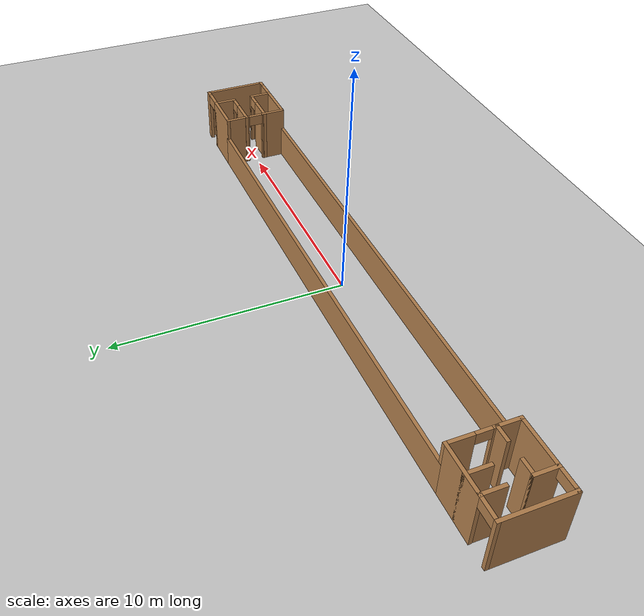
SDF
<sdf version="1.7">
 <world name="default">
  <light name="sun" type="directional">
   <pose>0 0 10 0 -0 0</pose>
   <diffuse>0.8 0.8 0.8 1</diffuse>
   <specular>0.2 0.2 0.2 1</specular>
   <attenuation>
    <range>1000</range>
    <constant>0.9</constant>
    <linear>0.01</linear>
    <quadratic>0.001</quadratic>
   </attenuation>
   <direction>-0.5 0.1 -0.9</direction>
   <spot><inner_angle>0</inner_angle><outer_angle>0</outer_angle><falloff>0</falloff></spot>
  </light>
  <model name="ground_plane">
   <static>1</static>
   <link name="link">
    <collision name="collision">
     <geometry><plane><normal>0 0 1</normal><size>100 100</size></plane></geometry>
     <surface><friction><ode><mu>100</mu><mu2>50</mu2></ode></friction></surface>
    </collision>
    <visual name="visual">
     <cast_shadows>0</cast_shadows>
     <geometry><plane><normal>0 0 1</normal><size>100 100</size></plane></geometry>
     <material>
      <script><uri>file://media/materials/scripts/gazebo.material</uri><name>Gazebo/Grey</name></script>
     </material>
    </visual>
   </link>
  </model>
  <gravity>0 0 -9.8</gravity>
  <magnetic_field>6e-06 2.3e-05 -4.2e-05</magnetic_field>
  <atmosphere type="adiabatic"/>
  <physics type="ode">
   <max_step_size>0.001</max_step_size>
   <real_time_factor>1</real_time_factor>
   <real_time_update_rate>1000</real_time_update_rate>
  </physics>
  <scene><ambient>0.4 0.4 0.4 1</ambient><background>0.7 0.7 0.7 1</background><shadows>1</shadows></scene>
  <audio><device>default</device></audio>
  <spherical_coordinates>
   <surface_model>EARTH_WGS84</surface_model>
   <latitude_deg>0</latitude_deg>
   <longitude_deg>0</longitude_deg>
   <elevation>0</elevation>
   <heading_deg>0</heading_deg>
  </spherical_coordinates>
  <model name="tejas_train">
   <pose>0.0056 0.000165 0 0 -0 0</pose>
   <link name="Wall_11">
    <pose>-10.5 0 0 0 -0 -1.5708</pose>
    <visual name="Wall_11_Visual_0">
     <pose>-0.902332 0 1.25 0 -0 0</pose>
     <geometry><box><size>1.14533 0.15 2.5</size></box></geometry>
     <material>
      <script><uri>file://media/materials/scripts/gazebo.material</uri><name>Gazebo/Wood</name></script>
      <ambient>1 1 1 1</ambient>
     </material>
     <meta><layer>0</layer></meta>
    </visual>
    <collision name="Wall_11_Collision_0">
     <geometry><box><size>1.14533 0.15 2.5</size></box></geometry>
     <pose>-0.902332 0 1.25 0 -0 0</pose>
    </collision>
    <visual name="Wall_11_Visual_1">
     <pose>0.897668 0 1.25 0 -0 0</pose>
     <geometry><box><size>1.15467 0.15 2.5</size></box></geometry>
     <material>
      <script><uri>file://media/materials/scripts/gazebo.material</uri><name>Gazebo/Wood</name></script>
      <ambient>1 1 1 1</ambient>
     </material>
     <meta><layer>0</layer></meta>
    </visual>
    <collision name="Wall_11_Collision_1">
     <geometry><box><size>1.15467 0.15 2.5</size></box></geometry>
     <pose>0.897668 0 1.25 0 -0 0</pose>
    </collision>
    <visual name="Wall_11_Visual_2">
     <pose>-0.004665 0 2.25 0 -0 0</pose>
     <geometry><box><size>0.65 0.15 0.5</size></box></geometry>
     <material>
      <script><uri>file://media/materials/scripts/gazebo.material</uri><name>Gazebo/Wood</name></script>
      <ambient>1 1 1 1</ambient>
     </material>
     <meta><layer>0</layer></meta>
    </visual>
    <collision name="Wall_11_Collision_2">
     <geometry><box><size>0.65 0.15 0.5</size></box></geometry>
     <pose>-0.004665 0 2.25 0 -0 0</pose>
    </collision>
   </link>
   <link name="Wall_13">
    <pose>10.5 0 0 0 -0 -1.5708</pose>
    <visual name="Wall_13_Visual_0">
     <pose>-0.902332 0 1.25 0 -0 0</pose>
     <geometry><box><size>1.14533 0.15 2.5</size></box></geometry>
     <material>
      <script><uri>file://media/materials/scripts/gazebo.material</uri><name>Gazebo/Wood</name></script>
      <ambient>1 1 1 1</ambient>
     </material>
     <meta><layer>0</layer></meta>
    </visual>
    <collision name="Wall_13_Collision_0">
     <geometry><box><size>1.14533 0.15 2.5</size></box></geometry>
     <pose>-0.902332 0 1.25 0 -0 0</pose>
    </collision>
    <visual name="Wall_13_Visual_1">
     <pose>0.897668 0 1.25 0 -0 0</pose>
     <geometry><box><size>1.15467 0.15 2.5</size></box></geometry>
     <material>
      <script><uri>file://media/materials/scripts/gazebo.material</uri><name>Gazebo/Wood</name></script>
      <ambient>1 1 1 1</ambient>
     </material>
     <meta><layer>0</layer></meta>
    </visual>
    <collision name="Wall_13_Collision_1">
     <geometry><box><size>1.15467 0.15 2.5</size></box></geometry>
     <pose>0.897668 0 1.25 0 -0 0</pose>
    </collision>
    <visual name="Wall_13_Visual_2">
     <pose>-0.004665 0 2.25 0 -0 0</pose>
     <geometry><box><size>0.65 0.15 0.5</size></box></geometry>
     <material>
      <script><uri>file://media/materials/scripts/gazebo.material</uri><name>Gazebo/Wood</name></script>
      <ambient>1 1 1 1</ambient>
     </material>
     <meta><layer>0</layer></meta>
    </visual>
    <collision name="Wall_13_Collision_2">
     <geometry><box><size>0.65 0.15 0.5</size></box></geometry>
     <pose>-0.004665 0 2.25 0 -0 0</pose>
    </collision>
   </link>
   <link name="Wall_15">
    <pose>-12 1.4 0 0 -0 3.14159</pose>
    <visual name="Wall_15_Visual_0">
     <pose>-0.479459 0 1.25 0 -0 0</pose>
     <geometry><box><size>2.19108 0.15 2.5</size></box></geometry>
     <material>
      <script><uri>file://media/materials/scripts/gazebo.material</uri><name>Gazebo/Wood</name></script>
      <ambient>1 1 1 1</ambient>
     </material>
     <meta><layer>0</layer></meta>
    </visual>
    <collision name="Wall_15_Collision_0">
     <geometry><box><size>2.19108 0.15 2.5</size></box></geometry>
     <pose>-0.479459 0 1.25 0 -0 0</pose>
    </collision>
    <visual name="Wall_15_Visual_1">
     <pose>1.49554 0 1.25 0 -0 0</pose>
     <geometry><box><size>0.158918 0.15 2.5</size></box></geometry>
     <material>
      <script><uri>file://media/materials/scripts/gazebo.material</uri><name>Gazebo/Wood</name></script>
      <ambient>1 1 1 1</ambient>
     </material>
     <meta><layer>0</layer></meta>
    </visual>
    <collision name="Wall_15_Collision_1">
     <geometry><box><size>0.158918 0.15 2.5</size></box></geometry>
     <pose>1.49554 0 1.25 0 -0 0</pose>
    </collision>
    <visual name="Wall_15_Visual_2">
     <pose>1.01608 0 2.25 0 -0 0</pose>
     <geometry><box><size>0.8 0.15 0.5</size></box></geometry>
     <material>
      <script><uri>file://media/materials/scripts/gazebo.material</uri><name>Gazebo/Wood</name></script>
      <ambient>1 1 1 1</ambient>
     </material>
     <meta><layer>0</layer></meta>
    </visual>
    <collision name="Wall_15_Collision_2">
     <geometry><box><size>0.8 0.15 0.5</size></box></geometry>
     <pose>1.01608 0 2.25 0 -0 0</pose>
    </collision>
   </link>
   <link name="Wall_17">
    <pose>-12 -1.4 0 0 -0 3.14159</pose>
    <visual name="Wall_17_Visual_0">
     <pose>-0.487891 0 1.25 0 -0 0</pose>
     <geometry><box><size>2.17422 0.15 2.5</size></box></geometry>
     <material>
      <script><uri>file://media/materials/scripts/gazebo.material</uri><name>Gazebo/Wood</name></script>
      <ambient>1 1 1 1</ambient>
     </material>
     <meta><layer>0</layer></meta>
    </visual>
    <collision name="Wall_17_Collision_0">
     <geometry><box><size>2.17422 0.15 2.5</size></box></geometry>
     <pose>-0.487891 0 1.25 0 -0 0</pose>
    </collision>
    <visual name="Wall_17_Visual_1">
     <pose>1.48711 0 1.25 0 -0 0</pose>
     <geometry><box><size>0.175782 0.15 2.5</size></box></geometry>
     <material>
      <script><uri>file://media/materials/scripts/gazebo.material</uri><name>Gazebo/Wood</name></script>
      <ambient>1 1 1 1</ambient>
     </material>
     <meta><layer>0</layer></meta>
    </visual>
    <collision name="Wall_17_Collision_1">
     <geometry><box><size>0.175782 0.15 2.5</size></box></geometry>
     <pose>1.48711 0 1.25 0 -0 0</pose>
    </collision>
    <visual name="Wall_17_Visual_2">
     <pose>0.999218 0 2.25 0 -0 0</pose>
     <geometry><box><size>0.8 0.15 0.5</size></box></geometry>
     <material>
      <script><uri>file://media/materials/scripts/gazebo.material</uri><name>Gazebo/Wood</name></script>
      <ambient>1 1 1 1</ambient>
     </material>
     <meta><layer>0</layer></meta>
    </visual>
    <collision name="Wall_17_Collision_2">
     <geometry><box><size>0.8 0.15 0.5</size></box></geometry>
     <pose>0.999218 0 2.25 0 -0 0</pose>
    </collision>
   </link>
   <link name="Wall_19">
    <collision name="Wall_19_Collision">
     <geometry><box><size>1.05 0.15 2.5</size></box></geometry>
     <pose>0 0 1.25 0 -0 0</pose>
    </collision>
    <visual name="Wall_19_Visual">
     <pose>0 0 1.25 0 -0 0</pose>
     <geometry><box><size>1.05 0.15 2.5</size></box></geometry>
     <material>
      <script><uri>file://media/materials/scripts/gazebo.material</uri><name>Gazebo/Wood</name></script>
      <ambient>1 1 1 1</ambient>
     </material>
     <meta><layer>0</layer></meta>
    </visual>
    <pose>-11.718 0.95 0 0 -0 -1.5708</pose>
   </link>
   <link name="Wall_21">
    <collision name="Wall_21_Collision">
     <geometry><box><size>1.05 0.15 2.5</size></box></geometry>
     <pose>0 0 1.25 0 -0 0</pose>
    </collision>
    <visual name="Wall_21_Visual">
     <pose>0 0 1.25 0 -0 0</pose>
     <geometry><box><size>1.05 0.15 2.5</size></box></geometry>
     <material>
      <script><uri>file://media/materials/scripts/gazebo.material</uri><name>Gazebo/Wood</name></script>
      <ambient>1 1 1 1</ambient>
     </material>
     <meta><layer>0</layer></meta>
    </visual>
    <pose>-12.527 -0.95 0 0 -0 1.5708</pose>
   </link>
   <link name="Wall_23">
    <collision name="Wall_23_Collision">
     <geometry><box><size>1.05 0.15 2.5</size></box></geometry>
     <pose>0 0 1.25 0 -0 0</pose>
    </collision>
    <visual name="Wall_23_Visual">
     <pose>0 0 1.25 0 -0 0</pose>
     <geometry><box><size>1.05 0.15 2.5</size></box></geometry>
     <material>
      <script><uri>file://media/materials/scripts/gazebo.material</uri><name>Gazebo/Wood</name></script>
      <ambient>1 1 1 1</ambient>
     </material>
     <meta><layer>0</layer></meta>
    </visual>
    <pose>-12.527 0.95 0 0 -0 -1.5708</pose>
   </link>
   <link name="Wall_27">
    <collision name="Wall_27_Collision">
     <geometry><box><size>0.75 0.15 2.5</size></box></geometry>
     <pose>0 0 1.25 0 -0 0</pose>
    </collision>
    <visual name="Wall_27_Visual">
     <pose>0 0 1.25 0 -0 0</pose>
     <geometry><box><size>0.75 0.15 2.5</size></box></geometry>
     <material>
      <script><uri>file://media/materials/scripts/gazebo.material</uri><name>Gazebo/Wood</name></script>
      <ambient>1 1 1 1</ambient>
     </material>
     <meta><layer>0</layer></meta>
    </visual>
    <pose>-12.227 -0.5 0 0 -0 0</pose>
   </link>
   <link name="Wall_29">
    <collision name="Wall_29_Collision">
     <geometry><box><size>0.75 0.15 2.5</size></box></geometry>
     <pose>0 0 1.25 0 -0 0</pose>
    </collision>
    <visual name="Wall_29_Visual">
     <pose>0 0 1.25 0 -0 0</pose>
     <geometry><box><size>0.75 0.15 2.5</size></box></geometry>
     <material>
      <script><uri>file://media/materials/scripts/gazebo.material</uri><name>Gazebo/Wood</name></script>
      <ambient>1 1 1 1</ambient>
     </material>
     <meta><layer>0</layer></meta>
    </visual>
    <pose>-10.8034 -0.478648 0 0 -0 3.14159</pose>
   </link>
   <link name="Wall_31">
    <collision name="Wall_31_Collision">
     <geometry><box><size>2.95 0.15 2.5</size></box></geometry>
     <pose>0 0 1.25 0 -0 0</pose>
    </collision>
    <visual name="Wall_31_Visual">
     <pose>0 0 1.25 0 -0 0</pose>
     <geometry><box><size>2.95 0.15 2.5</size></box></geometry>
     <material>
      <script><uri>file://media/materials/scripts/gazebo.material</uri><name>Gazebo/Wood</name></script>
      <ambient>1 1 1 1</ambient>
     </material>
     <meta><layer>0</layer></meta>
    </visual>
    <pose>-13.5 0 0 0 -0 -1.5708</pose>
   </link>
   <link name="Wall_35">
    <pose>12 1.4 0 0 -0 0</pose>
    <visual name="Wall_35_Visual_0">
     <pose>-0.569532 0 1.25 0 -0 0</pose>
     <geometry><box><size>2.01094 0.15 2.5</size></box></geometry>
     <material>
      <script><uri>file://media/materials/scripts/gazebo.material</uri><name>Gazebo/Wood</name></script>
      <ambient>1 1 1 1</ambient>
     </material>
     <meta><layer>0</layer></meta>
    </visual>
    <collision name="Wall_35_Collision_0">
     <geometry><box><size>2.01094 0.15 2.5</size></box></geometry>
     <pose>-0.569532 0 1.25 0 -0 0</pose>
    </collision>
    <visual name="Wall_35_Visual_1">
     <pose>1.40547 0 1.25 0 -0 0</pose>
     <geometry><box><size>0.339064 0.15 2.5</size></box></geometry>
     <material>
      <script><uri>file://media/materials/scripts/gazebo.material</uri><name>Gazebo/Wood</name></script>
      <ambient>1 1 1 1</ambient>
     </material>
     <meta><layer>0</layer></meta>
    </visual>
    <collision name="Wall_35_Collision_1">
     <geometry><box><size>0.339064 0.15 2.5</size></box></geometry>
     <pose>1.40547 0 1.25 0 -0 0</pose>
    </collision>
    <visual name="Wall_35_Visual_2">
     <pose>0.835936 0 2.25 0 -0 0</pose>
     <geometry><box><size>0.8 0.15 0.5</size></box></geometry>
     <material>
      <script><uri>file://media/materials/scripts/gazebo.material</uri><name>Gazebo/Wood</name></script>
      <ambient>1 1 1 1</ambient>
     </material>
     <meta><layer>0</layer></meta>
    </visual>
    <collision name="Wall_35_Collision_2">
     <geometry><box><size>0.8 0.15 0.5</size></box></geometry>
     <pose>0.835936 0 2.25 0 -0 0</pose>
    </collision>
   </link>
   <link name="Wall_37">
    <pose>12 -1.4 0 0 -0 0</pose>
    <visual name="Wall_37_Visual_0">
     <pose>-0.569532 0 1.25 0 -0 0</pose>
     <geometry><box><size>2.01094 0.15 2.5</size></box></geometry>
     <material>
      <script><uri>file://media/materials/scripts/gazebo.material</uri><name>Gazebo/Wood</name></script>
      <ambient>1 1 1 1</ambient>
     </material>
     <meta><layer>0</layer></meta>
    </visual>
    <collision name="Wall_37_Collision_0">
     <geometry><box><size>2.01094 0.15 2.5</size></box></geometry>
     <pose>-0.569532 0 1.25 0 -0 0</pose>
    </collision>
    <visual name="Wall_37_Visual_1">
     <pose>1.40547 0 1.25 0 -0 0</pose>
     <geometry><box><size>0.339064 0.15 2.5</size></box></geometry>
     <material>
      <script><uri>file://media/materials/scripts/gazebo.material</uri><name>Gazebo/Wood</name></script>
      <ambient>1 1 1 1</ambient>
     </material>
     <meta><layer>0</layer></meta>
    </visual>
    <collision name="Wall_37_Collision_1">
     <geometry><box><size>0.339064 0.15 2.5</size></box></geometry>
     <pose>1.40547 0 1.25 0 -0 0</pose>
    </collision>
    <visual name="Wall_37_Visual_2">
     <pose>0.835936 0 2.25 0 -0 0</pose>
     <geometry><box><size>0.8 0.15 0.5</size></box></geometry>
     <material>
      <script><uri>file://media/materials/scripts/gazebo.material</uri><name>Gazebo/Wood</name></script>
      <ambient>1 1 1 1</ambient>
     </material>
     <meta><layer>0</layer></meta>
    </visual>
    <collision name="Wall_37_Collision_2">
     <geometry><box><size>0.8 0.15 0.5</size></box></geometry>
     <pose>0.835936 0 2.25 0 -0 0</pose>
    </collision>
   </link>
   <link name="Wall_39">
    <pose>11.417 0.466 0 0 -0 0</pose>
    <visual name="Wall_39_Visual_0">
     <pose>-0.378988 0 1.25 0 -0 0</pose>
     <geometry><box><size>1.24202 0.15 2.5</size></box></geometry>
     <material>
      <script><uri>file://media/materials/scripts/gazebo.material</uri><name>Gazebo/Wood</name></script>
      <ambient>1 1 1 1</ambient>
     </material>
     <meta><layer>0</layer></meta>
    </visual>
    <collision name="Wall_39_Collision_0">
     <geometry><box><size>1.24202 0.15 2.5</size></box></geometry>
     <pose>-0.378988 0 1.25 0 -0 0</pose>
    </collision>
    <visual name="Wall_39_Visual_1">
     <pose>0.921012 0 1.25 0 -0 0</pose>
     <geometry><box><size>0.157975 0.15 2.5</size></box></geometry>
     <material>
      <script><uri>file://media/materials/scripts/gazebo.material</uri><name>Gazebo/Wood</name></script>
      <ambient>1 1 1 1</ambient>
     </material>
     <meta><layer>0</layer></meta>
    </visual>
    <collision name="Wall_39_Collision_1">
     <geometry><box><size>0.157975 0.15 2.5</size></box></geometry>
     <pose>0.921012 0 1.25 0 -0 0</pose>
    </collision>
    <visual name="Wall_39_Visual_2">
     <pose>0.542025 0 2.25 0 -0 0</pose>
     <geometry><box><size>0.6 0.15 0.5</size></box></geometry>
     <material>
      <script><uri>file://media/materials/scripts/gazebo.material</uri><name>Gazebo/Wood</name></script>
      <ambient>1 1 1 1</ambient>
     </material>
     <meta><layer>0</layer></meta>
    </visual>
    <collision name="Wall_39_Collision_2">
     <geometry><box><size>0.6 0.15 0.5</size></box></geometry>
     <pose>0.542025 0 2.25 0 -0 0</pose>
    </collision>
   </link>
   <link name="Wall_40">
    <collision name="Wall_40_Collision">
     <geometry><box><size>1.084 0.15 2.5</size></box></geometry>
     <pose>0 0 1.25 0 -0 0</pose>
    </collision>
    <visual name="Wall_40_Visual">
     <pose>0 0 1.25 0 -0 0</pose>
     <geometry><box><size>1.084 0.15 2.5</size></box></geometry>
     <material>
      <script><uri>file://media/materials/scripts/gazebo.material</uri><name>Gazebo/Wood</name></script>
      <ambient>1 1 1 1</ambient>
     </material>
     <meta><layer>0</layer></meta>
    </visual>
    <pose>12.342 0.933 0 0 -0 1.5708</pose>
   </link>
   <link name="Wall_42">
    <pose>11.417 -0.466 0 0 -0 0</pose>
    <visual name="Wall_42_Visual_0">
     <pose>-0.378988 0 1.25 0 -0 0</pose>
     <geometry><box><size>1.24202 0.15 2.5</size></box></geometry>
     <material>
      <script><uri>file://media/materials/scripts/gazebo.material</uri><name>Gazebo/Wood</name></script>
      <ambient>1 1 1 1</ambient>
     </material>
     <meta><layer>0</layer></meta>
    </visual>
    <collision name="Wall_42_Collision_0">
     <geometry><box><size>1.24202 0.15 2.5</size></box></geometry>
     <pose>-0.378988 0 1.25 0 -0 0</pose>
    </collision>
    <visual name="Wall_42_Visual_1">
     <pose>0.921012 0 1.25 0 -0 0</pose>
     <geometry><box><size>0.157975 0.15 2.5</size></box></geometry>
     <material>
      <script><uri>file://media/materials/scripts/gazebo.material</uri><name>Gazebo/Wood</name></script>
      <ambient>1 1 1 1</ambient>
     </material>
     <meta><layer>0</layer></meta>
    </visual>
    <collision name="Wall_42_Collision_1">
     <geometry><box><size>0.157975 0.15 2.5</size></box></geometry>
     <pose>0.921012 0 1.25 0 -0 0</pose>
    </collision>
    <visual name="Wall_42_Visual_2">
     <pose>0.542025 0 2.25 0 -0 0</pose>
     <geometry><box><size>0.6 0.15 0.5</size></box></geometry>
     <material>
      <script><uri>file://media/materials/scripts/gazebo.material</uri><name>Gazebo/Wood</name></script>
      <ambient>1 1 1 1</ambient>
     </material>
     <meta><layer>0</layer></meta>
    </visual>
    <collision name="Wall_42_Collision_2">
     <geometry><box><size>0.6 0.15 0.5</size></box></geometry>
     <pose>0.542025 0 2.25 0 -0 0</pose>
    </collision>
   </link>
   <link name="Wall_43">
    <collision name="Wall_43_Collision">
     <geometry><box><size>1.08072 0.15 2.5</size></box></geometry>
     <pose>0 0 1.25 0 -0 0</pose>
    </collision>
    <visual name="Wall_43_Visual">
     <pose>0 0 1.25 0 -0 0</pose>
     <geometry><box><size>1.08072 0.15 2.5</size></box></geometry>
     <material>
      <script><uri>file://media/materials/scripts/gazebo.material</uri><name>Gazebo/Wood</name></script>
      <ambient>1 1 1 1</ambient>
     </material>
     <meta><layer>0</layer></meta>
    </visual>
    <pose>12.342 -0.931 0 0 -0 -1.5708</pose>
   </link>
   <link name="Wall_45">
    <collision name="Wall_45_Collision">
     <geometry><box><size>2.95 0.15 2.5</size></box></geometry>
     <pose>0 0 1.25 0 -0 0</pose>
    </collision>
    <visual name="Wall_45_Visual">
     <pose>0 0 1.25 0 -0 0</pose>
     <geometry><box><size>2.95 0.15 2.5</size></box></geometry>
     <material>
      <script><uri>file://media/materials/scripts/gazebo.material</uri><name>Gazebo/Wood</name></script>
      <ambient>1 1 1 1</ambient>
     </material>
     <meta><layer>0</layer></meta>
    </visual>
    <pose>13.5 0 0 0 -0 -1.5708</pose>
   </link>
   <link name="Wall_7">
    <collision name="Wall_7_Collision">
     <geometry><box><size>21.15 0.15 1.5</size></box></geometry>
     <pose>0 0 0.75 0 -0 0</pose>
    </collision>
    <visual name="Wall_7_Visual">
     <pose>0 0 0.75 0 -0 0</pose>
     <geometry><box><size>21.15 0.15 1.5</size></box></geometry>
     <material>
      <script><uri>file://media/materials/scripts/gazebo.material</uri><name>Gazebo/Wood</name></script>
      <ambient>1 1 1 1</ambient>
     </material>
     <meta><layer>0</layer></meta>
    </visual>
    <pose>0 1.4 0 0 -0 0</pose>
   </link>
   <link name="Wall_9">
    <collision name="Wall_9_Collision">
     <geometry><box><size>21.15 0.15 1.5</size></box></geometry>
     <pose>0 0 0.75 0 -0 0</pose>
    </collision>
    <visual name="Wall_9_Visual">
     <pose>0 0 0.75 0 -0 0</pose>
     <geometry><box><size>21.15 0.15 1.5</size></box></geometry>
     <material>
      <script><uri>file://media/materials/scripts/gazebo.material</uri><name>Gazebo/Wood</name></script>
      <ambient>1 1 1 1</ambient>
     </material>
     <meta><layer>0</layer></meta>
    </visual>
    <pose>0 -1.4 0 0 -0 0</pose>
   </link>
   <static>1</static>
  </model>
 </world>
</sdf>
